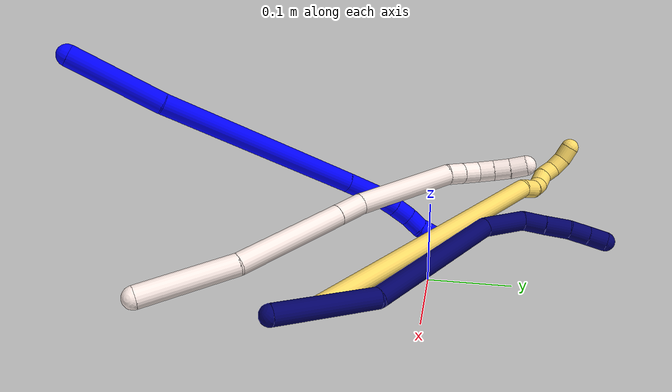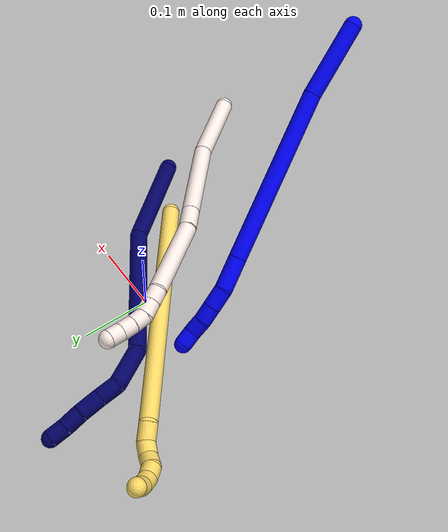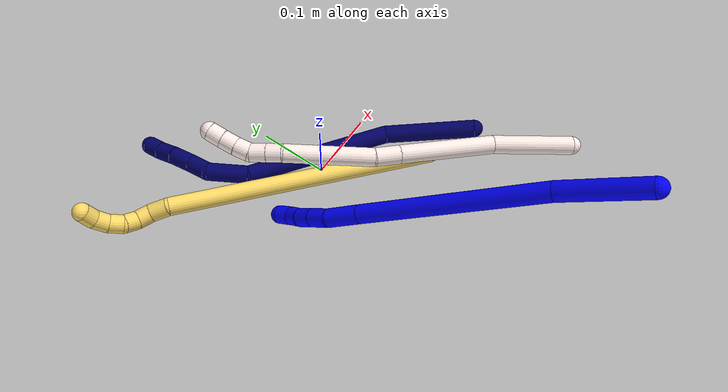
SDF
<sdf version="1.7">
 <world name="default">
  <model name="1">
   <static>0</static>
   <link name="1">
    <collision name="collision-cylinder-e_1_1_4">
     <pose>0.000722 0.001649 -0.055338 -3.11181 0.013037 -0.825103</pose>
     <geometry><cylinder><radius>0.0125</radius><length>0.110734</length></cylinder></geometry>
     <surface>
      <friction><ode><mu>1.16</mu><mu2>1.16</mu2><slip1>0</slip1><slip2>0</slip2></ode></friction>
      <contact><ode><kp>1e+06</kp><kd>1</kd><max_vel>0</max_vel><min_depth>0.001</min_depth></ode></contact>
     </surface>
    </collision>
    <visual name="visual-cylinder-e_1_1_4">
     <pose>0.000722 0.001649 -0.055338 -3.11181 0.013037 -0.825103</pose>
     <geometry><cylinder><radius>0.0125</radius><length>0.110734</length></cylinder></geometry>
     <material><ambient>0 0 1 1</ambient></material>
    </visual>
    <collision name="collision-cylinder-e_2_4_5">
     <pose>0.017258 0.013883 -0.233135 -3.05537 0.127954 -1.95636</pose>
     <geometry><cylinder><radius>0.0125</radius><length>0.247859</length></cylinder></geometry>
     <surface>
      <friction><ode><mu>1.16</mu><mu2>1.16</mu2><slip1>0</slip1><slip2>0</slip2></ode></friction>
      <contact><ode><kp>1e+06</kp><kd>1</kd><max_vel>0</max_vel><min_depth>0.001</min_depth></ode></contact>
     </surface>
    </collision>
    <visual name="visual-cylinder-e_2_4_5">
     <pose>0.017258 0.013883 -0.233135 -3.05537 0.127954 -1.95636</pose>
     <geometry><cylinder><radius>0.0125</radius><length>0.247859</length></cylinder></geometry>
     <material><ambient>0 0 1 1</ambient></material>
    </visual>
    <collision name="collision-cylinder-e_3_5_6">
     <pose>0.035889 0.026637 -0.378508 -3.04721 0.121799 -1.82357</pose>
     <geometry><cylinder><radius>0.0125</radius><length>0.046376</length></cylinder></geometry>
     <surface>
      <friction><ode><mu>1.16</mu><mu2>1.16</mu2><slip1>0</slip1><slip2>0</slip2></ode></friction>
      <contact><ode><kp>1e+06</kp><kd>1</kd><max_vel>0</max_vel><min_depth>0.001</min_depth></ode></contact>
     </surface>
    </collision>
    <visual name="visual-cylinder-e_3_5_6">
     <pose>0.035889 0.026637 -0.378508 -3.04721 0.121799 -1.82357</pose>
     <geometry><cylinder><radius>0.0125</radius><length>0.046376</length></cylinder></geometry>
     <material><ambient>0 0 1 1</ambient></material>
    </visual>
    <collision name="collision-cylinder-e_4_6_7">
     <pose>0.03717 0.029239 -0.415486 -3.11078 -0.108775 2.59007</pose>
     <geometry><cylinder><radius>0.0125</radius><length>0.028309</length></cylinder></geometry>
     <surface>
      <friction><ode><mu>1.16</mu><mu2>1.16</mu2><slip1>0</slip1><slip2>0</slip2></ode></friction>
      <contact><ode><kp>1e+06</kp><kd>1</kd><max_vel>0</max_vel><min_depth>0.001</min_depth></ode></contact>
     </surface>
    </collision>
    <visual name="visual-cylinder-e_4_6_7">
     <pose>0.03717 0.029239 -0.415486 -3.11078 -0.108775 2.59007</pose>
     <geometry><cylinder><radius>0.0125</radius><length>0.028309</length></cylinder></geometry>
     <material><ambient>0 0 1 1</ambient></material>
    </visual>
    <collision name="collision-cylinder-e_5_7_8">
     <pose>0.033938 0.030242 -0.44099 -3.09191 -0.146893 2.49027</pose>
     <geometry><cylinder><radius>0.0125</radius><length>0.023157</length></cylinder></geometry>
     <surface>
      <friction><ode><mu>1.16</mu><mu2>1.16</mu2><slip1>0</slip1><slip2>0</slip2></ode></friction>
      <contact><ode><kp>1e+06</kp><kd>1</kd><max_vel>0</max_vel><min_depth>0.001</min_depth></ode></contact>
     </surface>
    </collision>
    <visual name="visual-cylinder-e_5_7_8">
     <pose>0.033938 0.030242 -0.44099 -3.09191 -0.146893 2.49027</pose>
     <geometry><cylinder><radius>0.0125</radius><length>0.023157</length></cylinder></geometry>
     <material><ambient>0 0 1 1</ambient></material>
    </visual>
    <collision name="collision-cylinder-e_6_8_9">
     <pose>0.028719 0.030875 -0.462682 -3.13533 -0.331197 3.1041</pose>
     <geometry><cylinder><radius>0.0125</radius><length>0.021682</length></cylinder></geometry>
     <surface>
      <friction><ode><mu>1.16</mu><mu2>1.16</mu2><slip1>0</slip1><slip2>0</slip2></ode></friction>
      <contact><ode><kp>1e+06</kp><kd>1</kd><max_vel>0</max_vel><min_depth>0.001</min_depth></ode></contact>
     </surface>
    </collision>
    <visual name="visual-cylinder-e_6_8_9">
     <pose>0.028719 0.030875 -0.462682 -3.13533 -0.331197 3.1041</pose>
     <geometry><cylinder><radius>0.0125</radius><length>0.021682</length></cylinder></geometry>
     <material><ambient>0 0 1 1</ambient></material>
    </visual>
    <collision name="collision-cylinder-e_7_9_2">
     <pose>0.024468 0.030278 -0.483831 3.08104 -0.066335 -1.66189</pose>
     <geometry><cylinder><radius>0.0125</radius><length>0.021883</length></cylinder></geometry>
     <surface>
      <friction><ode><mu>1.16</mu><mu2>1.16</mu2><slip1>0</slip1><slip2>0</slip2></ode></friction>
      <contact><ode><kp>1e+06</kp><kd>1</kd><max_vel>0</max_vel><min_depth>0.001</min_depth></ode></contact>
     </surface>
    </collision>
    <visual name="visual-cylinder-e_7_9_2">
     <pose>0.024468 0.030278 -0.483831 3.08104 -0.066335 -1.66189</pose>
     <geometry><cylinder><radius>0.0125</radius><length>0.021883</length></cylinder></geometry>
     <material><ambient>0 0 1 1</ambient></material>
    </visual>
    <collision name="collision-sphere-2">
     <pose>0.023743 0.029617 -0.494728 0 -0 0</pose>
     <geometry><sphere><radius>0.0125</radius></sphere></geometry>
     <surface>
      <friction><ode><mu>1.16</mu><mu2>1.16</mu2><slip1>0</slip1><slip2>0</slip2></ode></friction>
      <contact><ode><kp>1e+06</kp><kd>1</kd><max_vel>0</max_vel><min_depth>0.001</min_depth></ode></contact>
     </surface>
    </collision>
    <visual name="visual-sphere-2">
     <pose>0.023743 0.029617 -0.494728 0 -0 0</pose>
     <geometry><sphere><radius>0.0125</radius></sphere></geometry>
     <material><ambient>0 0 1 1</ambient></material>
    </visual>
    <collision name="collision-sphere-9">
     <pose>0.025193 0.030939 -0.472933 0 -0 0</pose>
     <geometry><sphere><radius>0.0125</radius></sphere></geometry>
     <surface>
      <friction><ode><mu>1.16</mu><mu2>1.16</mu2><slip1>0</slip1><slip2>0</slip2></ode></friction>
      <contact><ode><kp>1e+06</kp><kd>1</kd><max_vel>0</max_vel><min_depth>0.001</min_depth></ode></contact>
     </surface>
    </collision>
    <visual name="visual-sphere-9">
     <pose>0.025193 0.030939 -0.472933 0 -0 0</pose>
     <geometry><sphere><radius>0.0125</radius></sphere></geometry>
     <material><ambient>0 0 1 1</ambient></material>
    </visual>
    <collision name="collision-sphere-4">
     <pose>0.001444 0.003298 -0.110675 0 -0 0</pose>
     <geometry><sphere><radius>0.0125</radius></sphere></geometry>
     <surface>
      <friction><ode><mu>1.16</mu><mu2>1.16</mu2><slip1>0</slip1><slip2>0</slip2></ode></friction>
      <contact><ode><kp>1e+06</kp><kd>1</kd><max_vel>0</max_vel><min_depth>0.001</min_depth></ode></contact>
     </surface>
    </collision>
    <visual name="visual-sphere-4">
     <pose>0.001444 0.003298 -0.110675 0 -0 0</pose>
     <geometry><sphere><radius>0.0125</radius></sphere></geometry>
     <material><ambient>0 0 1 1</ambient></material>
    </visual>
    <collision name="collision-sphere-1">
     <geometry><sphere><radius>0.0125</radius></sphere></geometry>
     <surface>
      <friction><ode><mu>1.16</mu><mu2>1.16</mu2><slip1>0</slip1><slip2>0</slip2></ode></friction>
      <contact><ode><kp>1e+06</kp><kd>1</kd><max_vel>0</max_vel><min_depth>0.001</min_depth></ode></contact>
     </surface>
    </collision>
    <visual name="visual-sphere-1">
     <geometry><sphere><radius>0.0125</radius></sphere></geometry>
     <material><ambient>0 0 1 1</ambient></material>
    </visual>
    <collision name="collision-sphere-8">
     <pose>0.032244 0.03081 -0.45243 0 -0 0</pose>
     <geometry><sphere><radius>0.0125</radius></sphere></geometry>
     <surface>
      <friction><ode><mu>1.16</mu><mu2>1.16</mu2><slip1>0</slip1><slip2>0</slip2></ode></friction>
      <contact><ode><kp>1e+06</kp><kd>1</kd><max_vel>0</max_vel><min_depth>0.001</min_depth></ode></contact>
     </surface>
    </collision>
    <visual name="visual-sphere-8">
     <pose>0.032244 0.03081 -0.45243 0 -0 0</pose>
     <geometry><sphere><radius>0.0125</radius></sphere></geometry>
     <material><ambient>0 0 1 1</ambient></material>
    </visual>
    <collision name="collision-sphere-5">
     <pose>0.033072 0.024468 -0.355595 0 -0 0</pose>
     <geometry><sphere><radius>0.0125</radius></sphere></geometry>
     <surface>
      <friction><ode><mu>1.16</mu><mu2>1.16</mu2><slip1>0</slip1><slip2>0</slip2></ode></friction>
      <contact><ode><kp>1e+06</kp><kd>1</kd><max_vel>0</max_vel><min_depth>0.001</min_depth></ode></contact>
     </surface>
    </collision>
    <visual name="visual-sphere-5">
     <pose>0.033072 0.024468 -0.355595 0 -0 0</pose>
     <geometry><sphere><radius>0.0125</radius></sphere></geometry>
     <material><ambient>0 0 1 1</ambient></material>
    </visual>
    <collision name="collision-sphere-6">
     <pose>0.038706 0.028806 -0.401422 0 -0 0</pose>
     <geometry><sphere><radius>0.0125</radius></sphere></geometry>
     <surface>
      <friction><ode><mu>1.16</mu><mu2>1.16</mu2><slip1>0</slip1><slip2>0</slip2></ode></friction>
      <contact><ode><kp>1e+06</kp><kd>1</kd><max_vel>0</max_vel><min_depth>0.001</min_depth></ode></contact>
     </surface>
    </collision>
    <visual name="visual-sphere-6">
     <pose>0.038706 0.028806 -0.401422 0 -0 0</pose>
     <geometry><sphere><radius>0.0125</radius></sphere></geometry>
     <material><ambient>0 0 1 1</ambient></material>
    </visual>
    <collision name="collision-sphere-7">
     <pose>0.035633 0.029673 -0.429551 0 -0 0</pose>
     <geometry><sphere><radius>0.0125</radius></sphere></geometry>
     <surface>
      <friction><ode><mu>1.16</mu><mu2>1.16</mu2><slip1>0</slip1><slip2>0</slip2></ode></friction>
      <contact><ode><kp>1e+06</kp><kd>1</kd><max_vel>0</max_vel><min_depth>0.001</min_depth></ode></contact>
     </surface>
    </collision>
    <visual name="visual-sphere-7">
     <pose>0.035633 0.029673 -0.429551 0 -0 0</pose>
     <geometry><sphere><radius>0.0125</radius></sphere></geometry>
     <material><ambient>0 0 1 1</ambient></material>
    </visual>
    <inertial>
     <pose>0.018036 0.015438 -0.248119 0 -0 0</pose>
     <mass>0.5</mass>
     <inertia>
      <ixx>-0.001674</ixx>
      <ixy>0</ixy>
      <ixz>0</ixz>
      <iyy>-0.000847</iyy>
      <iyz>0</iyz>
      <izz>-0.000317</izz>
     </inertia>
    </inertial>
   </link>
   <pose>0.060626 -0.391976 0.274381 -0.891632 -0.606408 2.9998</pose>
  </model>
  <model name="5">
   <static>0</static>
   <link name="5">
    <collision name="collision-cylinder-e_1_1_4">
     <pose>-0.030661 0.040039 0.180295 -0.218529 -0.164516 0.018088</pose>
     <geometry><cylinder><radius>0.0125</radius><length>0.374429</length></cylinder></geometry>
     <surface>
      <friction><ode><mu>1.16</mu><mu2>1.16</mu2><slip1>0</slip1><slip2>0</slip2></ode></friction>
      <contact><ode><kp>1e+06</kp><kd>1</kd><max_vel>0</max_vel><min_depth>0.001</min_depth></ode></contact>
     </surface>
    </collision>
    <visual name="visual-cylinder-e_1_1_4">
     <pose>-0.030661 0.040039 0.180295 -0.218529 -0.164516 0.018088</pose>
     <geometry><cylinder><radius>0.0125</radius><length>0.374429</length></cylinder></geometry>
     <material><ambient>1 0.858824 0.4 1</ambient></material>
    </visual>
    <collision name="collision-cylinder-e_2_4_5">
     <pose>-0.064588 0.087124 0.370726 -0.607458 -0.258615 0.081467</pose>
     <geometry><cylinder><radius>0.0125</radius><length>0.025539</length></cylinder></geometry>
     <surface>
      <friction><ode><mu>1.16</mu><mu2>1.16</mu2><slip1>0</slip1><slip2>0</slip2></ode></friction>
      <contact><ode><kp>1e+06</kp><kd>1</kd><max_vel>0</max_vel><min_depth>0.001</min_depth></ode></contact>
     </surface>
    </collision>
    <visual name="visual-cylinder-e_2_4_5">
     <pose>-0.064588 0.087124 0.370726 -0.607458 -0.258615 0.081467</pose>
     <geometry><cylinder><radius>0.0125</radius><length>0.025539</length></cylinder></geometry>
     <material><ambient>1 0.858824 0.4 1</ambient></material>
    </visual>
    <collision name="collision-cylinder-e_3_5_6">
     <pose>-0.07219 0.096503 0.389572 -0.261634 -0.448229 0.059962</pose>
     <geometry><cylinder><radius>0.0125</radius><length>0.020012</length></cylinder></geometry>
     <surface>
      <friction><ode><mu>1.16</mu><mu2>1.16</mu2><slip1>0</slip1><slip2>0</slip2></ode></friction>
      <contact><ode><kp>1e+06</kp><kd>1</kd><max_vel>0</max_vel><min_depth>0.001</min_depth></ode></contact>
     </surface>
    </collision>
    <visual name="visual-cylinder-e_3_5_6">
     <pose>-0.07219 0.096503 0.389572 -0.261634 -0.448229 0.059962</pose>
     <geometry><cylinder><radius>0.0125</radius><length>0.020012</length></cylinder></geometry>
     <material><ambient>1 0.858824 0.4 1</ambient></material>
    </visual>
    <collision name="collision-cylinder-e_4_6_7">
     <pose>-0.079173 0.096637 0.407675 0.229892 -0.267777 -0.0311</pose>
     <geometry><cylinder><radius>0.0125</radius><length>0.020006</length></cylinder></geometry>
     <surface>
      <friction><ode><mu>1.16</mu><mu2>1.16</mu2><slip1>0</slip1><slip2>0</slip2></ode></friction>
      <contact><ode><kp>1e+06</kp><kd>1</kd><max_vel>0</max_vel><min_depth>0.001</min_depth></ode></contact>
     </surface>
    </collision>
    <visual name="visual-cylinder-e_4_6_7">
     <pose>-0.079173 0.096637 0.407675 0.229892 -0.267777 -0.0311</pose>
     <geometry><cylinder><radius>0.0125</radius><length>0.020006</length></cylinder></geometry>
     <material><ambient>1 0.858824 0.4 1</ambient></material>
    </visual>
    <collision name="collision-cylinder-e_5_7_8">
     <pose>-0.081081 0.095204 0.427013 -0.07673 0.073879 -0.002837</pose>
     <geometry><cylinder><radius>0.0125</radius><length>0.020004</length></cylinder></geometry>
     <surface>
      <friction><ode><mu>1.16</mu><mu2>1.16</mu2><slip1>0</slip1><slip2>0</slip2></ode></friction>
      <contact><ode><kp>1e+06</kp><kd>1</kd><max_vel>0</max_vel><min_depth>0.001</min_depth></ode></contact>
     </surface>
    </collision>
    <visual name="visual-cylinder-e_5_7_8">
     <pose>-0.081081 0.095204 0.427013 -0.07673 0.073879 -0.002837</pose>
     <geometry><cylinder><radius>0.0125</radius><length>0.020004</length></cylinder></geometry>
     <material><ambient>1 0.858824 0.4 1</ambient></material>
    </visual>
    <collision name="collision-cylinder-e_6_8_9">
     <pose>-0.077361 0.094023 0.446305 0.205154 0.302763 0.031404</pose>
     <geometry><cylinder><radius>0.0125</radius><length>0.020004</length></cylinder></geometry>
     <surface>
      <friction><ode><mu>1.16</mu><mu2>1.16</mu2><slip1>0</slip1><slip2>0</slip2></ode></friction>
      <contact><ode><kp>1e+06</kp><kd>1</kd><max_vel>0</max_vel><min_depth>0.001</min_depth></ode></contact>
     </surface>
    </collision>
    <visual name="visual-cylinder-e_6_8_9">
     <pose>-0.077361 0.094023 0.446305 0.205154 0.302763 0.031404</pose>
     <geometry><cylinder><radius>0.0125</radius><length>0.020004</length></cylinder></geometry>
     <material><ambient>1 0.858824 0.4 1</ambient></material>
    </visual>
    <collision name="collision-cylinder-e_7_9_2">
     <pose>-0.070264 0.087289 0.463411 0.552976 0.423919 0.121972</pose>
     <geometry><cylinder><radius>0.0125</radius><length>0.020006</length></cylinder></geometry>
     <surface>
      <friction><ode><mu>1.16</mu><mu2>1.16</mu2><slip1>0</slip1><slip2>0</slip2></ode></friction>
      <contact><ode><kp>1e+06</kp><kd>1</kd><max_vel>0</max_vel><min_depth>0.001</min_depth></ode></contact>
     </surface>
    </collision>
    <visual name="visual-cylinder-e_7_9_2">
     <pose>-0.070264 0.087289 0.463411 0.552976 0.423919 0.121972</pose>
     <geometry><cylinder><radius>0.0125</radius><length>0.020006</length></cylinder></geometry>
     <material><ambient>1 0.858824 0.4 1</ambient></material>
    </visual>
    <collision name="collision-sphere-2">
     <pose>-0.066149 0.082501 0.47117 0 -0 0</pose>
     <geometry><sphere><radius>0.0125</radius></sphere></geometry>
     <surface>
      <friction><ode><mu>1.16</mu><mu2>1.16</mu2><slip1>0</slip1><slip2>0</slip2></ode></friction>
      <contact><ode><kp>1e+06</kp><kd>1</kd><max_vel>0</max_vel><min_depth>0.001</min_depth></ode></contact>
     </surface>
    </collision>
    <visual name="visual-sphere-2">
     <pose>-0.066149 0.082501 0.47117 0 -0 0</pose>
     <geometry><sphere><radius>0.0125</radius></sphere></geometry>
     <material><ambient>1 0.858824 0.4 1</ambient></material>
    </visual>
    <collision name="collision-sphere-9">
     <pose>-0.074378 0.092078 0.455652 0 -0 0</pose>
     <geometry><sphere><radius>0.0125</radius></sphere></geometry>
     <surface>
      <friction><ode><mu>1.16</mu><mu2>1.16</mu2><slip1>0</slip1><slip2>0</slip2></ode></friction>
      <contact><ode><kp>1e+06</kp><kd>1</kd><max_vel>0</max_vel><min_depth>0.001</min_depth></ode></contact>
     </surface>
    </collision>
    <visual name="visual-sphere-9">
     <pose>-0.074378 0.092078 0.455652 0 -0 0</pose>
     <geometry><sphere><radius>0.0125</radius></sphere></geometry>
     <material><ambient>1 0.858824 0.4 1</ambient></material>
    </visual>
    <collision name="collision-sphere-4">
     <pose>-0.061322 0.080078 0.360589 0 -0 0</pose>
     <geometry><sphere><radius>0.0125</radius></sphere></geometry>
     <surface>
      <friction><ode><mu>1.16</mu><mu2>1.16</mu2><slip1>0</slip1><slip2>0</slip2></ode></friction>
      <contact><ode><kp>1e+06</kp><kd>1</kd><max_vel>0</max_vel><min_depth>0.001</min_depth></ode></contact>
     </surface>
    </collision>
    <visual name="visual-sphere-4">
     <pose>-0.061322 0.080078 0.360589 0 -0 0</pose>
     <geometry><sphere><radius>0.0125</radius></sphere></geometry>
     <material><ambient>1 0.858824 0.4 1</ambient></material>
    </visual>
    <collision name="collision-sphere-1">
     <geometry><sphere><radius>0.0125</radius></sphere></geometry>
     <surface>
      <friction><ode><mu>1.16</mu><mu2>1.16</mu2><slip1>0</slip1><slip2>0</slip2></ode></friction>
      <contact><ode><kp>1e+06</kp><kd>1</kd><max_vel>0</max_vel><min_depth>0.001</min_depth></ode></contact>
     </surface>
    </collision>
    <visual name="visual-sphere-1">
     <geometry><sphere><radius>0.0125</radius></sphere></geometry>
     <material><ambient>1 0.858824 0.4 1</ambient></material>
    </visual>
    <collision name="collision-sphere-8">
     <pose>-0.080343 0.095968 0.436958 0 -0 0</pose>
     <geometry><sphere><radius>0.0125</radius></sphere></geometry>
     <surface>
      <friction><ode><mu>1.16</mu><mu2>1.16</mu2><slip1>0</slip1><slip2>0</slip2></ode></friction>
      <contact><ode><kp>1e+06</kp><kd>1</kd><max_vel>0</max_vel><min_depth>0.001</min_depth></ode></contact>
     </surface>
    </collision>
    <visual name="visual-sphere-8">
     <pose>-0.080343 0.095968 0.436958 0 -0 0</pose>
     <geometry><sphere><radius>0.0125</radius></sphere></geometry>
     <material><ambient>1 0.858824 0.4 1</ambient></material>
    </visual>
    <collision name="collision-sphere-5">
     <pose>-0.067854 0.09417 0.380862 0 -0 0</pose>
     <geometry><sphere><radius>0.0125</radius></sphere></geometry>
     <surface>
      <friction><ode><mu>1.16</mu><mu2>1.16</mu2><slip1>0</slip1><slip2>0</slip2></ode></friction>
      <contact><ode><kp>1e+06</kp><kd>1</kd><max_vel>0</max_vel><min_depth>0.001</min_depth></ode></contact>
     </surface>
    </collision>
    <visual name="visual-sphere-5">
     <pose>-0.067854 0.09417 0.380862 0 -0 0</pose>
     <geometry><sphere><radius>0.0125</radius></sphere></geometry>
     <material><ambient>1 0.858824 0.4 1</ambient></material>
    </visual>
    <collision name="collision-sphere-6">
     <pose>-0.076526 0.098835 0.398283 0 -0 0</pose>
     <geometry><sphere><radius>0.0125</radius></sphere></geometry>
     <surface>
      <friction><ode><mu>1.16</mu><mu2>1.16</mu2><slip1>0</slip1><slip2>0</slip2></ode></friction>
      <contact><ode><kp>1e+06</kp><kd>1</kd><max_vel>0</max_vel><min_depth>0.001</min_depth></ode></contact>
     </surface>
    </collision>
    <visual name="visual-sphere-6">
     <pose>-0.076526 0.098835 0.398283 0 -0 0</pose>
     <geometry><sphere><radius>0.0125</radius></sphere></geometry>
     <material><ambient>1 0.858824 0.4 1</ambient></material>
    </visual>
    <collision name="collision-sphere-7">
     <pose>-0.081819 0.094439 0.417068 0 -0 0</pose>
     <geometry><sphere><radius>0.0125</radius></sphere></geometry>
     <surface>
      <friction><ode><mu>1.16</mu><mu2>1.16</mu2><slip1>0</slip1><slip2>0</slip2></ode></friction>
      <contact><ode><kp>1e+06</kp><kd>1</kd><max_vel>0</max_vel><min_depth>0.001</min_depth></ode></contact>
     </surface>
    </collision>
    <visual name="visual-sphere-7">
     <pose>-0.081819 0.094439 0.417068 0 -0 0</pose>
     <geometry><sphere><radius>0.0125</radius></sphere></geometry>
     <material><ambient>1 0.858824 0.4 1</ambient></material>
    </visual>
    <inertial>
     <pose>-0.041467 0.053226 0.239337 0 -0 0</pose>
     <mass>0.5</mass>
     <inertia>
      <ixx>0.004412</ixx>
      <ixy>0</ixy>
      <ixz>0</ixz>
      <iyy>0.004381</iyy>
      <iyz>0</iyz>
      <izz>-0.000183</izz>
     </inertia>
    </inertial>
   </link>
   <pose>0.107141 -0.115129 0.013761 -1.17581 -0.38236 0.685352</pose>
  </model>
  <model name="7">
   <static>0</static>
   <link name="7">
    <collision name="collision-cylinder-e_1_1_4">
     <pose>-0.023449 0.034133 -0.047907 -2.52254 -0.379324 1.08124</pose>
     <geometry><cylinder><radius>0.0125</radius><length>0.126649</length></cylinder></geometry>
     <surface>
      <friction><ode><mu>1.16</mu><mu2>1.16</mu2><slip1>0</slip1><slip2>0</slip2></ode></friction>
      <contact><ode><kp>1e+06</kp><kd>1</kd><max_vel>0</max_vel><min_depth>0.001</min_depth></ode></contact>
     </surface>
    </collision>
    <visual name="visual-cylinder-e_1_1_4">
     <pose>-0.023449 0.034133 -0.047907 -2.52254 -0.379324 1.08124</pose>
     <geometry><cylinder><radius>0.0125</radius><length>0.126649</length></cylinder></geometry>
     <material><ambient>0.003922 0 0.403922 1</ambient></material>
    </visual>
    <collision name="collision-cylinder-e_2_4_5">
     <pose>-0.119032 0.111874 -0.154558 -2.50301 -0.77834 1.78459</pose>
     <geometry><cylinder><radius>0.0125</radius><length>0.205484</length></cylinder></geometry>
     <surface>
      <friction><ode><mu>1.16</mu><mu2>1.16</mu2><slip1>0</slip1><slip2>0</slip2></ode></friction>
      <contact><ode><kp>1e+06</kp><kd>1</kd><max_vel>0</max_vel><min_depth>0.001</min_depth></ode></contact>
     </surface>
    </collision>
    <visual name="visual-cylinder-e_2_4_5">
     <pose>-0.119032 0.111874 -0.154558 -2.50301 -0.77834 1.78459</pose>
     <geometry><cylinder><radius>0.0125</radius><length>0.205484</length></cylinder></geometry>
     <material><ambient>0.003922 0 0.403922 1</ambient></material>
    </visual>
    <collision name="collision-cylinder-e_3_5_6">
     <pose>-0.200282 0.174165 -0.232883 -2.37966 -0.324866 0.776729</pose>
     <geometry><cylinder><radius>0.0125</radius><length>0.057115</length></cylinder></geometry>
     <surface>
      <friction><ode><mu>1.16</mu><mu2>1.16</mu2><slip1>0</slip1><slip2>0</slip2></ode></friction>
      <contact><ode><kp>1e+06</kp><kd>1</kd><max_vel>0</max_vel><min_depth>0.001</min_depth></ode></contact>
     </surface>
    </collision>
    <visual name="visual-cylinder-e_3_5_6">
     <pose>-0.200282 0.174165 -0.232883 -2.37966 -0.324866 0.776729</pose>
     <geometry><cylinder><radius>0.0125</radius><length>0.057115</length></cylinder></geometry>
     <material><ambient>0.003922 0 0.403922 1</ambient></material>
    </visual>
    <collision name="collision-cylinder-e_4_6_7">
     <pose>-0.206591 0.202607 -0.26274 -2.382 0.195452 -0.481669</pose>
     <geometry><cylinder><radius>0.0125</radius><length>0.028895</length></cylinder></geometry>
     <surface>
      <friction><ode><mu>1.16</mu><mu2>1.16</mu2><slip1>0</slip1><slip2>0</slip2></ode></friction>
      <contact><ode><kp>1e+06</kp><kd>1</kd><max_vel>0</max_vel><min_depth>0.001</min_depth></ode></contact>
     </surface>
    </collision>
    <visual name="visual-cylinder-e_4_6_7">
     <pose>-0.206591 0.202607 -0.26274 -2.382 0.195452 -0.481669</pose>
     <geometry><cylinder><radius>0.0125</radius><length>0.028895</length></cylinder></geometry>
     <material><ambient>0.003922 0 0.403922 1</ambient></material>
    </visual>
    <collision name="collision-cylinder-e_5_7_8">
     <pose>-0.201377 0.223298 -0.284526 -2.38197 0.150559 -0.373469</pose>
     <geometry><cylinder><radius>0.0125</radius><length>0.03211</length></cylinder></geometry>
     <surface>
      <friction><ode><mu>1.16</mu><mu2>1.16</mu2><slip1>0</slip1><slip2>0</slip2></ode></friction>
      <contact><ode><kp>1e+06</kp><kd>1</kd><max_vel>0</max_vel><min_depth>0.001</min_depth></ode></contact>
     </surface>
    </collision>
    <visual name="visual-cylinder-e_5_7_8">
     <pose>-0.201377 0.223298 -0.284526 -2.38197 0.150559 -0.373469</pose>
     <geometry><cylinder><radius>0.0125</radius><length>0.03211</length></cylinder></geometry>
     <material><ambient>0.003922 0 0.403922 1</ambient></material>
    </visual>
    <collision name="collision-cylinder-e_6_8_9">
     <pose>-0.196551 0.241554 -0.306392 -2.52596 0.188379 -0.577669</pose>
     <geometry><cylinder><radius>0.0125</radius><length>0.025825</length></cylinder></geometry>
     <surface>
      <friction><ode><mu>1.16</mu><mu2>1.16</mu2><slip1>0</slip1><slip2>0</slip2></ode></friction>
      <contact><ode><kp>1e+06</kp><kd>1</kd><max_vel>0</max_vel><min_depth>0.001</min_depth></ode></contact>
     </surface>
    </collision>
    <visual name="visual-cylinder-e_6_8_9">
     <pose>-0.196551 0.241554 -0.306392 -2.52596 0.188379 -0.577669</pose>
     <geometry><cylinder><radius>0.0125</radius><length>0.025825</length></cylinder></geometry>
     <material><ambient>0.003922 0 0.403922 1</ambient></material>
    </visual>
    <collision name="collision-cylinder-e_7_9_2">
     <pose>-0.191024 0.256034 -0.325813 -2.47344 0.262962 -0.728063</pose>
     <geometry><cylinder><radius>0.0125</radius><length>0.023921</length></cylinder></geometry>
     <surface>
      <friction><ode><mu>1.16</mu><mu2>1.16</mu2><slip1>0</slip1><slip2>0</slip2></ode></friction>
      <contact><ode><kp>1e+06</kp><kd>1</kd><max_vel>0</max_vel><min_depth>0.001</min_depth></ode></contact>
     </surface>
    </collision>
    <visual name="visual-cylinder-e_7_9_2">
     <pose>-0.191024 0.256034 -0.325813 -2.47344 0.262962 -0.728063</pose>
     <geometry><cylinder><radius>0.0125</radius><length>0.023921</length></cylinder></geometry>
     <material><ambient>0.003922 0 0.403922 1</ambient></material>
    </visual>
    <collision name="collision-sphere-2">
     <pose>-0.187915 0.263189 -0.334879 0 -0 0</pose>
     <geometry><sphere><radius>0.0125</radius></sphere></geometry>
     <surface>
      <friction><ode><mu>1.16</mu><mu2>1.16</mu2><slip1>0</slip1><slip2>0</slip2></ode></friction>
      <contact><ode><kp>1e+06</kp><kd>1</kd><max_vel>0</max_vel><min_depth>0.001</min_depth></ode></contact>
     </surface>
    </collision>
    <visual name="visual-sphere-2">
     <pose>-0.187915 0.263189 -0.334879 0 -0 0</pose>
     <geometry><sphere><radius>0.0125</radius></sphere></geometry>
     <material><ambient>0.003922 0 0.403922 1</ambient></material>
    </visual>
    <collision name="collision-sphere-9">
     <pose>-0.194133 0.248879 -0.316747 0 -0 0</pose>
     <geometry><sphere><radius>0.0125</radius></sphere></geometry>
     <surface>
      <friction><ode><mu>1.16</mu><mu2>1.16</mu2><slip1>0</slip1><slip2>0</slip2></ode></friction>
      <contact><ode><kp>1e+06</kp><kd>1</kd><max_vel>0</max_vel><min_depth>0.001</min_depth></ode></contact>
     </surface>
    </collision>
    <visual name="visual-sphere-9">
     <pose>-0.194133 0.248879 -0.316747 0 -0 0</pose>
     <geometry><sphere><radius>0.0125</radius></sphere></geometry>
     <material><ambient>0.003922 0 0.403922 1</ambient></material>
    </visual>
    <collision name="collision-sphere-4">
     <pose>-0.046897 0.068266 -0.095815 0 -0 0</pose>
     <geometry><sphere><radius>0.0125</radius></sphere></geometry>
     <surface>
      <friction><ode><mu>1.16</mu><mu2>1.16</mu2><slip1>0</slip1><slip2>0</slip2></ode></friction>
      <contact><ode><kp>1e+06</kp><kd>1</kd><max_vel>0</max_vel><min_depth>0.001</min_depth></ode></contact>
     </surface>
    </collision>
    <visual name="visual-sphere-4">
     <pose>-0.046897 0.068266 -0.095815 0 -0 0</pose>
     <geometry><sphere><radius>0.0125</radius></sphere></geometry>
     <material><ambient>0.003922 0 0.403922 1</ambient></material>
    </visual>
    <collision name="collision-sphere-1">
     <geometry><sphere><radius>0.0125</radius></sphere></geometry>
     <surface>
      <friction><ode><mu>1.16</mu><mu2>1.16</mu2><slip1>0</slip1><slip2>0</slip2></ode></friction>
      <contact><ode><kp>1e+06</kp><kd>1</kd><max_vel>0</max_vel><min_depth>0.001</min_depth></ode></contact>
     </surface>
    </collision>
    <visual name="visual-sphere-1">
     <geometry><sphere><radius>0.0125</radius></sphere></geometry>
     <material><ambient>0.003922 0 0.403922 1</ambient></material>
    </visual>
    <collision name="collision-sphere-8">
     <pose>-0.198969 0.234229 -0.296036 0 -0 0</pose>
     <geometry><sphere><radius>0.0125</radius></sphere></geometry>
     <surface>
      <friction><ode><mu>1.16</mu><mu2>1.16</mu2><slip1>0</slip1><slip2>0</slip2></ode></friction>
      <contact><ode><kp>1e+06</kp><kd>1</kd><max_vel>0</max_vel><min_depth>0.001</min_depth></ode></contact>
     </surface>
    </collision>
    <visual name="visual-sphere-8">
     <pose>-0.198969 0.234229 -0.296036 0 -0 0</pose>
     <geometry><sphere><radius>0.0125</radius></sphere></geometry>
     <material><ambient>0.003922 0 0.403922 1</ambient></material>
    </visual>
    <collision name="collision-sphere-5">
     <pose>-0.191167 0.155482 -0.213302 0 -0 0</pose>
     <geometry><sphere><radius>0.0125</radius></sphere></geometry>
     <surface>
      <friction><ode><mu>1.16</mu><mu2>1.16</mu2><slip1>0</slip1><slip2>0</slip2></ode></friction>
      <contact><ode><kp>1e+06</kp><kd>1</kd><max_vel>0</max_vel><min_depth>0.001</min_depth></ode></contact>
     </surface>
    </collision>
    <visual name="visual-sphere-5">
     <pose>-0.191167 0.155482 -0.213302 0 -0 0</pose>
     <geometry><sphere><radius>0.0125</radius></sphere></geometry>
     <material><ambient>0.003922 0 0.403922 1</ambient></material>
    </visual>
    <collision name="collision-sphere-6">
     <pose>-0.209397 0.192847 -0.252463 0 -0 0</pose>
     <geometry><sphere><radius>0.0125</radius></sphere></geometry>
     <surface>
      <friction><ode><mu>1.16</mu><mu2>1.16</mu2><slip1>0</slip1><slip2>0</slip2></ode></friction>
      <contact><ode><kp>1e+06</kp><kd>1</kd><max_vel>0</max_vel><min_depth>0.001</min_depth></ode></contact>
     </surface>
    </collision>
    <visual name="visual-sphere-6">
     <pose>-0.209397 0.192847 -0.252463 0 -0 0</pose>
     <geometry><sphere><radius>0.0125</radius></sphere></geometry>
     <material><ambient>0.003922 0 0.403922 1</ambient></material>
    </visual>
    <collision name="collision-sphere-7">
     <pose>-0.203786 0.212367 -0.273017 0 -0 0</pose>
     <geometry><sphere><radius>0.0125</radius></sphere></geometry>
     <surface>
      <friction><ode><mu>1.16</mu><mu2>1.16</mu2><slip1>0</slip1><slip2>0</slip2></ode></friction>
      <contact><ode><kp>1e+06</kp><kd>1</kd><max_vel>0</max_vel><min_depth>0.001</min_depth></ode></contact>
     </surface>
    </collision>
    <visual name="visual-sphere-7">
     <pose>-0.203786 0.212367 -0.273017 0 -0 0</pose>
     <geometry><sphere><radius>0.0125</radius></sphere></geometry>
     <material><ambient>0.003922 0 0.403922 1</ambient></material>
    </visual>
    <inertial>
     <pose>-0.121899 0.125292 -0.167125 0 -0 0</pose>
     <mass>0.5</mass>
     <inertia>
      <ixx>0.000631</ixx>
      <ixy>0</ixy>
      <ixz>0</ixz>
      <iyy>0.001055</iyy>
      <iyz>0</iyz>
      <izz>0.000132</izz>
     </inertia>
    </inertial>
   </link>
   <pose>0.165165 -0.14977 0.03744 0.689997 0.329558 0.184252</pose>
  </model>
  <model name="11">
   <static>0</static>
   <link name="11">
    <collision name="collision-cylinder-e_1_1_4">
     <pose>0.016207 0.040824 -0.033302 -2.25506 0.29843 -0.613298</pose>
     <geometry><cylinder><radius>0.0125</radius><length>0.110242</length></cylinder></geometry>
     <surface>
      <friction><ode><mu>1.16</mu><mu2>1.16</mu2><slip1>0</slip1><slip2>0</slip2></ode></friction>
      <contact><ode><kp>1e+06</kp><kd>1</kd><max_vel>0</max_vel><min_depth>0.001</min_depth></ode></contact>
     </surface>
    </collision>
    <visual name="visual-cylinder-e_1_1_4">
     <pose>0.016207 0.040824 -0.033302 -2.25506 0.29843 -0.613298</pose>
     <geometry><cylinder><radius>0.0125</radius><length>0.110242</length></cylinder></geometry>
     <material><ambient>1 0.933333 0.909804 1</ambient></material>
    </visual>
    <collision name="collision-cylinder-e_2_4_5">
     <pose>0.040579 0.129897 -0.111254 -2.31749 0.12359 -0.28126</pose>
     <geometry><cylinder><radius>0.0125</radius><length>0.132486</length></cylinder></geometry>
     <surface>
      <friction><ode><mu>1.16</mu><mu2>1.16</mu2><slip1>0</slip1><slip2>0</slip2></ode></friction>
      <contact><ode><kp>1e+06</kp><kd>1</kd><max_vel>0</max_vel><min_depth>0.001</min_depth></ode></contact>
     </surface>
    </collision>
    <visual name="visual-cylinder-e_2_4_5">
     <pose>0.040579 0.129897 -0.111254 -2.31749 0.12359 -0.28126</pose>
     <geometry><cylinder><radius>0.0125</radius><length>0.132486</length></cylinder></geometry>
     <material><ambient>1 0.933333 0.909804 1</ambient></material>
    </visual>
    <collision name="collision-cylinder-e_3_5_6">
     <pose>0.050702 0.190424 -0.167419 -2.32405 0.115689 -0.265797</pose>
     <geometry><cylinder><radius>0.0125</radius><length>0.033894</length></cylinder></geometry>
     <surface>
      <friction><ode><mu>1.16</mu><mu2>1.16</mu2><slip1>0</slip1><slip2>0</slip2></ode></friction>
      <contact><ode><kp>1e+06</kp><kd>1</kd><max_vel>0</max_vel><min_depth>0.001</min_depth></ode></contact>
     </surface>
    </collision>
    <visual name="visual-cylinder-e_3_5_6">
     <pose>0.050702 0.190424 -0.167419 -2.32405 0.115689 -0.265797</pose>
     <geometry><cylinder><radius>0.0125</radius><length>0.033894</length></cylinder></geometry>
     <material><ambient>1 0.933333 0.909804 1</ambient></material>
    </visual>
    <collision name="collision-cylinder-e_4_6_7">
     <pose>0.069396 0.249125 -0.213592 -2.21211 0.281265 -0.550397</pose>
     <geometry><cylinder><radius>0.0125</radius><length>0.120605</length></cylinder></geometry>
     <surface>
      <friction><ode><mu>1.16</mu><mu2>1.16</mu2><slip1>0</slip1><slip2>0</slip2></ode></friction>
      <contact><ode><kp>1e+06</kp><kd>1</kd><max_vel>0</max_vel><min_depth>0.001</min_depth></ode></contact>
     </surface>
    </collision>
    <visual name="visual-cylinder-e_4_6_7">
     <pose>0.069396 0.249125 -0.213592 -2.21211 0.281265 -0.550397</pose>
     <geometry><cylinder><radius>0.0125</radius><length>0.120605</length></cylinder></geometry>
     <material><ambient>1 0.933333 0.909804 1</ambient></material>
    </visual>
    <collision name="collision-cylinder-e_5_7_8">
     <pose>0.090895 0.302286 -0.254388 -2.30957 0.481289 -1.01405</pose>
     <geometry><cylinder><radius>0.0125</radius><length>0.020567</length></cylinder></geometry>
     <surface>
      <friction><ode><mu>1.16</mu><mu2>1.16</mu2><slip1>0</slip1><slip2>0</slip2></ode></friction>
      <contact><ode><kp>1e+06</kp><kd>1</kd><max_vel>0</max_vel><min_depth>0.001</min_depth></ode></contact>
     </surface>
    </collision>
    <visual name="visual-cylinder-e_5_7_8">
     <pose>0.090895 0.302286 -0.254388 -2.30957 0.481289 -1.01405</pose>
     <geometry><cylinder><radius>0.0125</radius><length>0.020567</length></cylinder></geometry>
     <material><ambient>1 0.933333 0.909804 1</ambient></material>
    </visual>
    <collision name="collision-cylinder-e_6_8_9">
     <pose>0.100675 0.316151 -0.267012 -2.30924 0.480252 -1.01177</pose>
     <geometry><cylinder><radius>0.0125</radius><length>0.021729</length></cylinder></geometry>
     <surface>
      <friction><ode><mu>1.16</mu><mu2>1.16</mu2><slip1>0</slip1><slip2>0</slip2></ode></friction>
      <contact><ode><kp>1e+06</kp><kd>1</kd><max_vel>0</max_vel><min_depth>0.001</min_depth></ode></contact>
     </surface>
    </collision>
    <visual name="visual-cylinder-e_6_8_9">
     <pose>0.100675 0.316151 -0.267012 -2.30924 0.480252 -1.01177</pose>
     <geometry><cylinder><radius>0.0125</radius><length>0.021729</length></cylinder></geometry>
     <material><ambient>1 0.933333 0.909804 1</ambient></material>
    </visual>
    <collision name="collision-cylinder-e_7_9_10">
     <pose>0.111429 0.331205 -0.275926 -1.86796 0.605096 -0.798691</pose>
     <geometry><cylinder><radius>0.0125</radius><length>0.020164</length></cylinder></geometry>
     <surface>
      <friction><ode><mu>1.16</mu><mu2>1.16</mu2><slip1>0</slip1><slip2>0</slip2></ode></friction>
      <contact><ode><kp>1e+06</kp><kd>1</kd><max_vel>0</max_vel><min_depth>0.001</min_depth></ode></contact>
     </surface>
    </collision>
    <visual name="visual-cylinder-e_7_9_10">
     <pose>0.111429 0.331205 -0.275926 -1.86796 0.605096 -0.798691</pose>
     <geometry><cylinder><radius>0.0125</radius><length>0.020164</length></cylinder></geometry>
     <material><ambient>1 0.933333 0.909804 1</ambient></material>
    </visual>
    <collision name="collision-cylinder-e_8_10_11">
     <pose>0.122988 0.347256 -0.279954 -1.7653 0.613045 -0.734889</pose>
     <geometry><cylinder><radius>0.0125</radius><length>0.020243</length></cylinder></geometry>
     <surface>
      <friction><ode><mu>1.16</mu><mu2>1.16</mu2><slip1>0</slip1><slip2>0</slip2></ode></friction>
      <contact><ode><kp>1e+06</kp><kd>1</kd><max_vel>0</max_vel><min_depth>0.001</min_depth></ode></contact>
     </surface>
    </collision>
    <visual name="visual-cylinder-e_8_10_11">
     <pose>0.122988 0.347256 -0.279954 -1.7653 0.613045 -0.734889</pose>
     <geometry><cylinder><radius>0.0125</radius><length>0.020243</length></cylinder></geometry>
     <material><ambient>1 0.933333 0.909804 1</ambient></material>
    </visual>
    <collision name="collision-cylinder-e_9_11_2">
     <pose>0.134035 0.363856 -0.282794 -1.716 0.547448 -0.628129</pose>
     <geometry><cylinder><radius>0.0125</radius><length>0.02007</length></cylinder></geometry>
     <surface>
      <friction><ode><mu>1.16</mu><mu2>1.16</mu2><slip1>0</slip1><slip2>0</slip2></ode></friction>
      <contact><ode><kp>1e+06</kp><kd>1</kd><max_vel>0</max_vel><min_depth>0.001</min_depth></ode></contact>
     </surface>
    </collision>
    <visual name="visual-cylinder-e_9_11_2">
     <pose>0.134035 0.363856 -0.282794 -1.716 0.547448 -0.628129</pose>
     <geometry><cylinder><radius>0.0125</radius><length>0.02007</length></cylinder></geometry>
     <material><ambient>1 0.933333 0.909804 1</ambient></material>
    </visual>
    <collision name="collision-sphere-2">
     <pose>0.139258 0.372335 -0.284034 0 -0 0</pose>
     <geometry><sphere><radius>0.0125</radius></sphere></geometry>
     <surface>
      <friction><ode><mu>1.16</mu><mu2>1.16</mu2><slip1>0</slip1><slip2>0</slip2></ode></friction>
      <contact><ode><kp>1e+06</kp><kd>1</kd><max_vel>0</max_vel><min_depth>0.001</min_depth></ode></contact>
     </surface>
    </collision>
    <visual name="visual-sphere-2">
     <pose>0.139258 0.372335 -0.284034 0 -0 0</pose>
     <geometry><sphere><radius>0.0125</radius></sphere></geometry>
     <material><ambient>1 0.933333 0.909804 1</ambient></material>
    </visual>
    <collision name="collision-sphere-11">
     <pose>0.128811 0.355378 -0.281554 0 -0 0</pose>
     <geometry><sphere><radius>0.0125</radius></sphere></geometry>
     <surface>
      <friction><ode><mu>1.16</mu><mu2>1.16</mu2><slip1>0</slip1><slip2>0</slip2></ode></friction>
      <contact><ode><kp>1e+06</kp><kd>1</kd><max_vel>0</max_vel><min_depth>0.001</min_depth></ode></contact>
     </surface>
    </collision>
    <visual name="visual-sphere-11">
     <pose>0.128811 0.355378 -0.281554 0 -0 0</pose>
     <geometry><sphere><radius>0.0125</radius></sphere></geometry>
     <material><ambient>1 0.933333 0.909804 1</ambient></material>
    </visual>
    <collision name="collision-sphere-10">
     <pose>0.117164 0.339134 -0.278354 0 -0 0</pose>
     <geometry><sphere><radius>0.0125</radius></sphere></geometry>
     <surface>
      <friction><ode><mu>1.16</mu><mu2>1.16</mu2><slip1>0</slip1><slip2>0</slip2></ode></friction>
      <contact><ode><kp>1e+06</kp><kd>1</kd><max_vel>0</max_vel><min_depth>0.001</min_depth></ode></contact>
     </surface>
    </collision>
    <visual name="visual-sphere-10">
     <pose>0.117164 0.339134 -0.278354 0 -0 0</pose>
     <geometry><sphere><radius>0.0125</radius></sphere></geometry>
     <material><ambient>1 0.933333 0.909804 1</ambient></material>
    </visual>
    <collision name="collision-sphere-9">
     <pose>0.105694 0.323276 -0.273498 0 -0 0</pose>
     <geometry><sphere><radius>0.0125</radius></sphere></geometry>
     <surface>
      <friction><ode><mu>1.16</mu><mu2>1.16</mu2><slip1>0</slip1><slip2>0</slip2></ode></friction>
      <contact><ode><kp>1e+06</kp><kd>1</kd><max_vel>0</max_vel><min_depth>0.001</min_depth></ode></contact>
     </surface>
    </collision>
    <visual name="visual-sphere-9">
     <pose>0.105694 0.323276 -0.273498 0 -0 0</pose>
     <geometry><sphere><radius>0.0125</radius></sphere></geometry>
     <material><ambient>1 0.933333 0.909804 1</ambient></material>
    </visual>
    <collision name="collision-sphere-4">
     <pose>0.032413 0.081649 -0.066604 0 -0 0</pose>
     <geometry><sphere><radius>0.0125</radius></sphere></geometry>
     <surface>
      <friction><ode><mu>1.16</mu><mu2>1.16</mu2><slip1>0</slip1><slip2>0</slip2></ode></friction>
      <contact><ode><kp>1e+06</kp><kd>1</kd><max_vel>0</max_vel><min_depth>0.001</min_depth></ode></contact>
     </surface>
    </collision>
    <visual name="visual-sphere-4">
     <pose>0.032413 0.081649 -0.066604 0 -0 0</pose>
     <geometry><sphere><radius>0.0125</radius></sphere></geometry>
     <material><ambient>1 0.933333 0.909804 1</ambient></material>
    </visual>
    <collision name="collision-sphere-1">
     <geometry><sphere><radius>0.0125</radius></sphere></geometry>
     <surface>
      <friction><ode><mu>1.16</mu><mu2>1.16</mu2><slip1>0</slip1><slip2>0</slip2></ode></friction>
      <contact><ode><kp>1e+06</kp><kd>1</kd><max_vel>0</max_vel><min_depth>0.001</min_depth></ode></contact>
     </surface>
    </collision>
    <visual name="visual-sphere-1">
     <geometry><sphere><radius>0.0125</radius></sphere></geometry>
     <material><ambient>1 0.933333 0.909804 1</ambient></material>
    </visual>
    <collision name="collision-sphere-8">
     <pose>0.095655 0.309025 -0.260526 0 -0 0</pose>
     <geometry><sphere><radius>0.0125</radius></sphere></geometry>
     <surface>
      <friction><ode><mu>1.16</mu><mu2>1.16</mu2><slip1>0</slip1><slip2>0</slip2></ode></friction>
      <contact><ode><kp>1e+06</kp><kd>1</kd><max_vel>0</max_vel><min_depth>0.001</min_depth></ode></contact>
     </surface>
    </collision>
    <visual name="visual-sphere-8">
     <pose>0.095655 0.309025 -0.260526 0 -0 0</pose>
     <geometry><sphere><radius>0.0125</radius></sphere></geometry>
     <material><ambient>1 0.933333 0.909804 1</ambient></material>
    </visual>
    <collision name="collision-sphere-5">
     <pose>0.048746 0.178144 -0.155904 0 -0 0</pose>
     <geometry><sphere><radius>0.0125</radius></sphere></geometry>
     <surface>
      <friction><ode><mu>1.16</mu><mu2>1.16</mu2><slip1>0</slip1><slip2>0</slip2></ode></friction>
      <contact><ode><kp>1e+06</kp><kd>1</kd><max_vel>0</max_vel><min_depth>0.001</min_depth></ode></contact>
     </surface>
    </collision>
    <visual name="visual-sphere-5">
     <pose>0.048746 0.178144 -0.155904 0 -0 0</pose>
     <geometry><sphere><radius>0.0125</radius></sphere></geometry>
     <material><ambient>1 0.933333 0.909804 1</ambient></material>
    </visual>
    <collision name="collision-sphere-6">
     <pose>0.052658 0.202703 -0.178933 0 -0 0</pose>
     <geometry><sphere><radius>0.0125</radius></sphere></geometry>
     <surface>
      <friction><ode><mu>1.16</mu><mu2>1.16</mu2><slip1>0</slip1><slip2>0</slip2></ode></friction>
      <contact><ode><kp>1e+06</kp><kd>1</kd><max_vel>0</max_vel><min_depth>0.001</min_depth></ode></contact>
     </surface>
    </collision>
    <visual name="visual-sphere-6">
     <pose>0.052658 0.202703 -0.178933 0 -0 0</pose>
     <geometry><sphere><radius>0.0125</radius></sphere></geometry>
     <material><ambient>1 0.933333 0.909804 1</ambient></material>
    </visual>
    <collision name="collision-sphere-7">
     <pose>0.086134 0.295547 -0.24825 0 -0 0</pose>
     <geometry><sphere><radius>0.0125</radius></sphere></geometry>
     <surface>
      <friction><ode><mu>1.16</mu><mu2>1.16</mu2><slip1>0</slip1><slip2>0</slip2></ode></friction>
      <contact><ode><kp>1e+06</kp><kd>1</kd><max_vel>0</max_vel><min_depth>0.001</min_depth></ode></contact>
     </surface>
    </collision>
    <visual name="visual-sphere-7">
     <pose>0.086134 0.295547 -0.24825 0 -0 0</pose>
     <geometry><sphere><radius>0.0125</radius></sphere></geometry>
     <material><ambient>1 0.933333 0.909804 1</ambient></material>
    </visual>
    <inertial>
     <pose>0.057469 0.184615 -0.155572 0 -0 0</pose>
     <mass>0.5</mass>
     <inertia>
      <ixx>0.000223</ixx>
      <ixy>0</ixy>
      <ixz>0</ixz>
      <iyy>-0.000403</iyy>
      <iyz>0</iyz>
      <izz>-0.000483</izz>
     </inertia>
    </inertial>
   </link>
   <pose>0.199971 -0.278371 0.06672 1.02878 0.646266 1.10047</pose>
  </model>
 </world>
</sdf>
